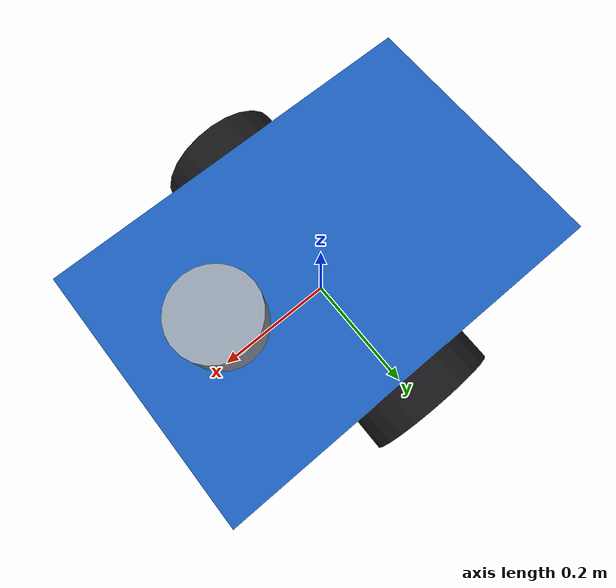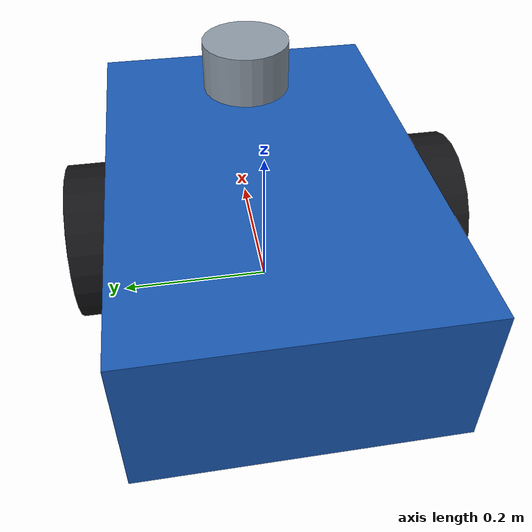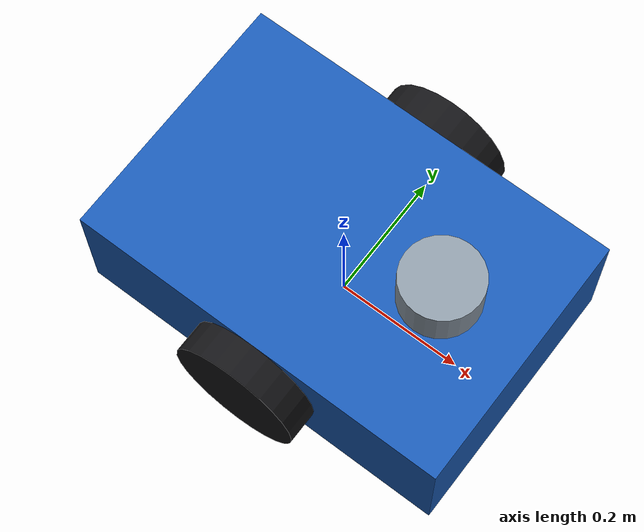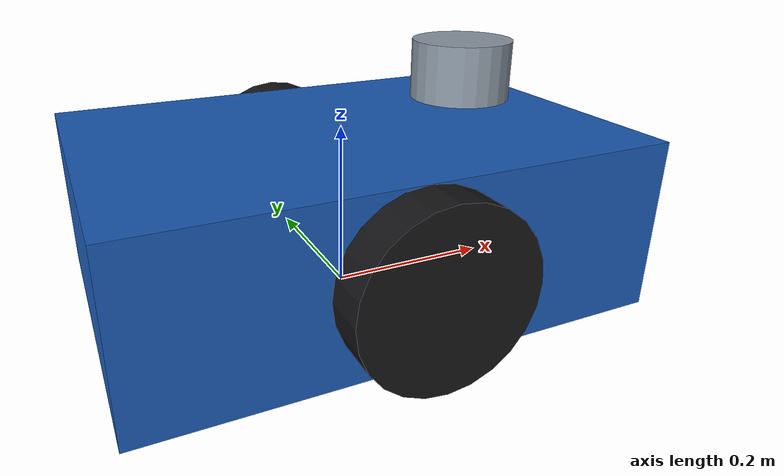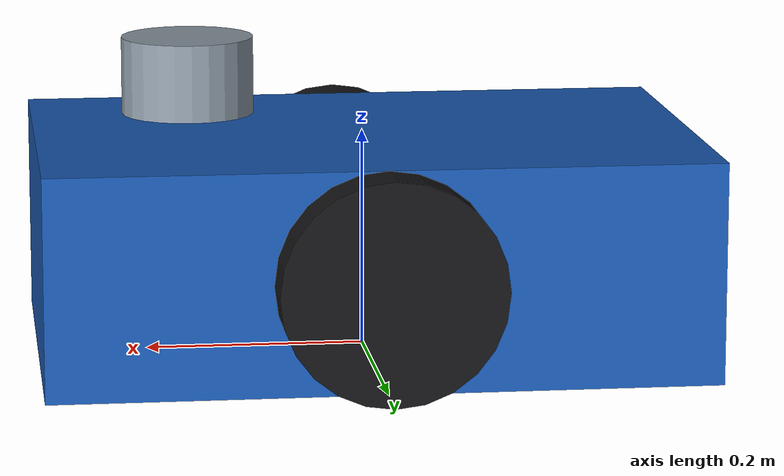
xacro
<?xml version="1.0"?>
<robot xmlns:xacro="http://www.ros.org/wiki/xacro" name="indoor_robot">
  <xacro:arg name="body_length" default="0.60"/>
  <xacro:arg name="body_width" default="0.40"/>
  <xacro:arg name="body_height" default="0.20"/>
  <xacro:arg name="wheel_radius" default="0.10"/>
  <xacro:arg name="wheel_width" default="0.05"/>
  <xacro:arg name="wheel_separation" default="0.45"/>
  <xacro:arg name="body_mass" default="20.0"/>
  <xacro:arg name="hardware_plugin" default="mock_components/GenericSystem"/>
  <xacro:arg name="transport" default="serial"/>
  <xacro:arg name="serial_port" default="/dev/ttyUSB0"/>
  <xacro:arg name="baud_rate" default="115200"/>
  <xacro:arg name="can_interface" default="can0"/>
  <xacro:arg name="encoder_cpr" default="4096"/>
  <xacro:arg name="gear_ratio" default="1.0"/>

  <xacro:property name="body_length" value="$(arg body_length)"/>
  <xacro:property name="body_width" value="$(arg body_width)"/>
  <xacro:property name="body_height" value="$(arg body_height)"/>
  <xacro:property name="wheel_radius" value="$(arg wheel_radius)"/>
  <xacro:property name="wheel_width" value="$(arg wheel_width)"/>
  <xacro:property name="wheel_separation" value="$(arg wheel_separation)"/>
  <xacro:property name="body_mass" value="$(arg body_mass)"/>

  <ros2_control name="IndoorRobotSystem" type="system">
    <hardware>
      <!-- Replace with the serial/CAN hardware plugin on the real robot. -->
      <plugin>$(arg hardware_plugin)</plugin>
      <param name="transport">$(arg transport)</param>
      <param name="serial_port">$(arg serial_port)</param>
      <param name="baud_rate">$(arg baud_rate)</param>
      <param name="can_interface">$(arg can_interface)</param>
      <param name="encoder_cpr">$(arg encoder_cpr)</param>
      <param name="gear_ratio">$(arg gear_ratio)</param>
    </hardware>
    <joint name="left_wheel_joint">
      <command_interface name="velocity"/>
      <state_interface name="position"/>
      <state_interface name="velocity"/>
    </joint>
    <joint name="right_wheel_joint">
      <command_interface name="velocity"/>
      <state_interface name="position"/>
      <state_interface name="velocity"/>
    </joint>
  </ros2_control>

  <xacro:include filename="$(find robot_description)/urdf/materials.xacro"/>
  <xacro:include filename="$(find robot_description)/urdf/sensors.xacro"/>
  <xacro:include filename="$(find robot_description)/urdf/gazebo.xacro"/>

  <link name="base_footprint"/>
  <link name="base_link">
    <inertial>
      <origin xyz="0 0 ${body_height / 2}"/>
      <mass value="${body_mass}"/>
      <inertia ixx="0.34" ixy="0" ixz="0" iyy="0.64" iyz="0" izz="0.87"/>
    </inertial>
    <visual>
      <origin xyz="0 0 ${body_height / 2}"/>
      <geometry><box size="${body_length} ${body_width} ${body_height}"/></geometry>
      <material name="body_blue"/>
    </visual>
    <collision>
      <origin xyz="0 0 ${body_height / 2}"/>
      <geometry><box size="${body_length} ${body_width} ${body_height}"/></geometry>
    </collision>
  </link>
  <joint name="base_footprint_joint" type="fixed">
    <parent link="base_footprint"/>
    <child link="base_link"/>
  </joint>

  <link name="left_wheel">
    <inertial>
      <mass value="1.0"/>
      <inertia ixx="0.005" ixy="0" ixz="0" iyy="0.005" iyz="0" izz="0.005"/>
    </inertial>
    <visual>
      <origin rpy="1.5708 0 0"/>
      <geometry><cylinder radius="${wheel_radius}" length="${wheel_width}"/></geometry>
      <material name="wheel_dark"/>
    </visual>
    <collision>
      <origin rpy="1.5708 0 0"/>
      <geometry><cylinder radius="${wheel_radius}" length="${wheel_width}"/></geometry>
    </collision>
  </link>
  <joint name="left_wheel_joint" type="continuous">
    <origin xyz="0 ${wheel_separation / 2} ${wheel_radius}"/>
    <parent link="base_link"/>
    <child link="left_wheel"/>
    <axis xyz="0 1 0"/>
  </joint>

  <link name="right_wheel">
    <inertial>
      <mass value="1.0"/>
      <inertia ixx="0.005" ixy="0" ixz="0" iyy="0.005" iyz="0" izz="0.005"/>
    </inertial>
    <visual>
      <origin rpy="1.5708 0 0"/>
      <geometry><cylinder radius="${wheel_radius}" length="${wheel_width}"/></geometry>
      <material name="wheel_dark"/>
    </visual>
    <collision>
      <origin rpy="1.5708 0 0"/>
      <geometry><cylinder radius="${wheel_radius}" length="${wheel_width}"/></geometry>
    </collision>
  </link>
  <joint name="right_wheel_joint" type="continuous">
    <origin xyz="0 -${wheel_separation / 2} ${wheel_radius}"/>
    <parent link="base_link"/>
    <child link="right_wheel"/>
    <axis xyz="0 1 0"/>
  </joint>

  <xacro:lidar_sensor parent="base_link" xyz="0.16 0 ${body_height + 0.02}"/>
  <xacro:imu_sensor parent="base_link" xyz="0 0 ${body_height}"/>
  <xacro:gazebo_drive left_joint="left_wheel_joint" right_joint="right_wheel_joint"
                       wheel_separation="${wheel_separation}" wheel_radius="${wheel_radius}"/>
</robot>

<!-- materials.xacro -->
<robot xmlns:xacro="http://www.ros.org/wiki/xacro" name="indoor_robot_materials">
  <material name="body_blue">
    <color rgba="0.10 0.35 0.70 1.0"/>
  </material>
  <material name="wheel_dark">
    <color rgba="0.08 0.08 0.09 1.0"/>
  </material>
  <material name="sensor_gray">
    <color rgba="0.55 0.60 0.65 1.0"/>
  </material>
</robot>

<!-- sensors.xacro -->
<robot xmlns:xacro="http://www.ros.org/wiki/xacro" name="indoor_robot_sensors">
  <xacro:macro name="lidar_sensor" params="parent xyz">
    <link name="lidar_link">
      <inertial>
        <mass value="0.25"/>
        <inertia ixx="0.0002" ixy="0" ixz="0" iyy="0.0002" iyz="0" izz="0.0002"/>
      </inertial>
      <visual>
        <origin xyz="0 0 0.035"/>
        <geometry><cylinder radius="0.06" length="0.07"/></geometry>
        <material name="sensor_gray"/>
      </visual>
      <collision>
        <origin xyz="0 0 0.035"/>
        <geometry><cylinder radius="0.06" length="0.07"/></geometry>
      </collision>
    </link>
    <joint name="lidar_joint" type="fixed">
      <origin xyz="${xyz}"/>
      <parent link="${parent}"/>
      <child link="lidar_link"/>
    </joint>
    <gazebo reference="lidar_link">
      <sensor name="lidar" type="gpu_lidar">
        <always_on>true</always_on>
        <update_rate>15.0</update_rate>
        <visualize>true</visualize>
        <topic>/scan</topic>
        <gz_frame_id>lidar_link</gz_frame_id>
        <lidar>
          <scan>
            <horizontal>
              <samples>720</samples>
              <resolution>1</resolution>
              <min_angle>-3.14159265</min_angle>
              <max_angle>3.14159265</max_angle>
            </horizontal>
          </scan>
          <range>
            <min>0.12</min>
            <max>12.0</max>
            <resolution>0.01</resolution>
          </range>
        </lidar>
      </sensor>
    </gazebo>
  </xacro:macro>

  <xacro:macro name="imu_sensor" params="parent xyz">
    <link name="imu_link"/>
    <joint name="imu_joint" type="fixed">
      <origin xyz="${xyz}"/>
      <parent link="${parent}"/>
      <child link="imu_link"/>
    </joint>
    <gazebo reference="imu_link">
      <sensor name="imu" type="imu">
        <always_on>true</always_on>
        <update_rate>100.0</update_rate>
        <visualize>false</visualize>
        <topic>/imu</topic>
        <gz_frame_id>imu_link</gz_frame_id>
      </sensor>
    </gazebo>
  </xacro:macro>
</robot>
